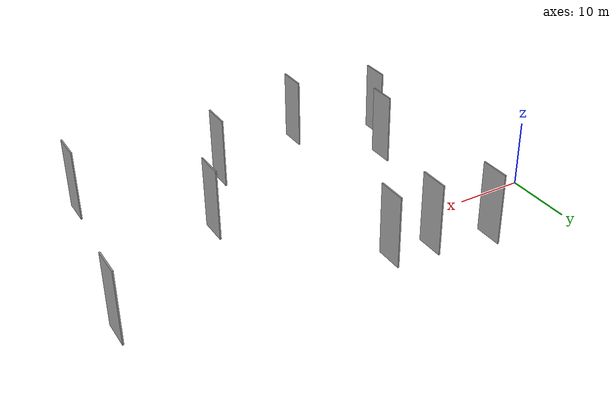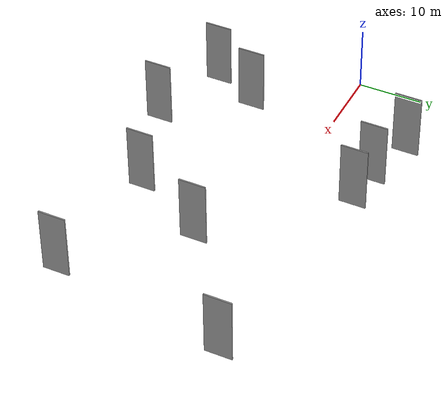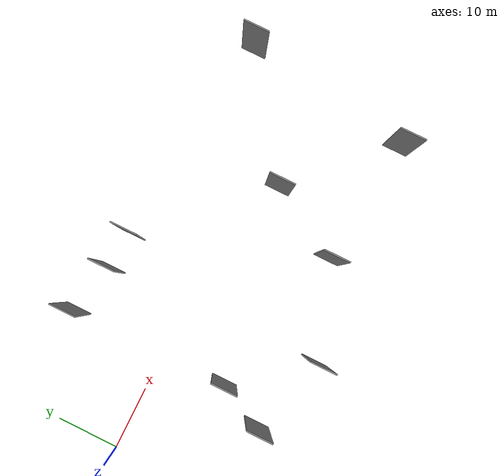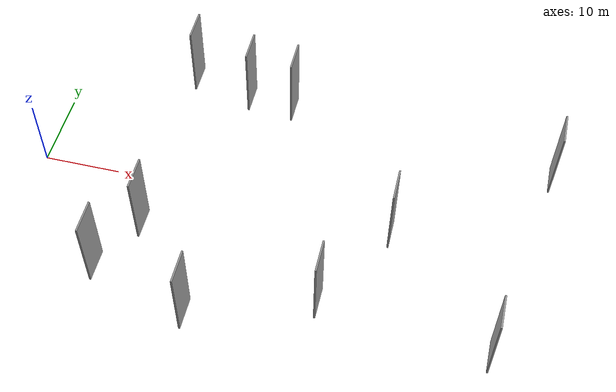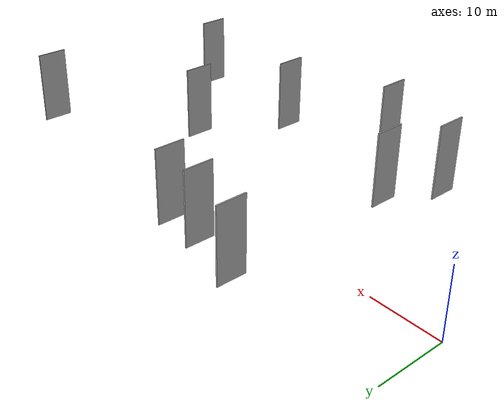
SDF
<sdf version="1.6">
 <world name="default">
  <scene>
   <sky><clouds><speed>12</speed></clouds></sky>
   <ambient>0.4 0.4 0.4 1</ambient>
   <background>0.7 0.7 0.7 1</background>
   <shadows>1</shadows>
  </scene>
  <gravity>0 0 -9.8066</gravity>
  <magnetic_field>6e-06 2.3e-05 -4.2e-05</magnetic_field>
  <physics default="0" name="default_physics" type="ode">
   <ode>
    <solver>
     <type>quick</type>
     <iters>10</iters>
     <sor>1.0</sor>
     <use_dynamic_moi_rescaling>0</use_dynamic_moi_rescaling>
    </solver>
    <constraints>
     <cfm>0</cfm>
     <erp>0.2</erp>
     <contact_max_correcting_vel>100</contact_max_correcting_vel>
     <contact_surface_layer>0.001</contact_surface_layer>
    </constraints>
   </ode>
   <max_step_size>0.004</max_step_size>
   <real_time_factor>1</real_time_factor>
   <real_time_update_rate>250</real_time_update_rate>
  </physics>
  <light name="sun" type="directional">
   <pose>0 0 10 0 0 0</pose>
   <diffuse>0.8 0.8 0.8 1</diffuse>
   <specular>0.2 0.2 0.2 1</specular>
   <attenuation>
    <range>1000</range>
    <constant>0.9</constant>
    <linear>0.01</linear>
    <quadratic>0.001</quadratic>
   </attenuation>
   <direction>-0.5 0.1 -0.9</direction>
  </light>
  <model name="grey_wall_1">
   <static>1</static>
   <pose>26.0132 -20.9499 5.0 0.000000 0.000000 1.570796</pose>
   <link name="link">
    <pose>0 0 5.00 0 0 0</pose>
    <collision name="collision"><geometry><box><size>4.00 0.2 10.00</size></box></geometry></collision>
    <visual name="visual">
     <cast_shadows>0</cast_shadows>
     <geometry><box><size>4.00 0.2 10.00</size></box></geometry>
     <material>
      <script>
       <uri>model://grey_wall/materials/scripts</uri>
       <uri>model://grey_wall/materials/textures</uri>
       <name>vrc/grey_wall</name>
      </script>
     </material>
    </visual>
   </link>
  </model>
  <model name="grey_wall_2">
   <static>1</static>
   <pose>40.4633 -16.0768 5.0 0.000000 0.000000 1.570796</pose>
   <link name="link">
    <pose>0 0 5.00 0 0 0</pose>
    <collision name="collision"><geometry><box><size>4.00 0.2 10.00</size></box></geometry></collision>
    <visual name="visual">
     <cast_shadows>0</cast_shadows>
     <geometry><box><size>4.00 0.2 10.00</size></box></geometry>
     <material>
      <script>
       <uri>model://grey_wall/materials/scripts</uri>
       <uri>model://grey_wall/materials/textures</uri>
       <name>vrc/grey_wall</name>
      </script>
     </material>
    </visual>
   </link>
  </model>
  <model name="grey_wall_3">
   <static>1</static>
   <pose>46.7918 -4.7349 5.0 0.000000 0.000000 1.570796</pose>
   <link name="link">
    <pose>0 0 5.00 0 0 0</pose>
    <collision name="collision"><geometry><box><size>4.00 0.2 10.00</size></box></geometry></collision>
    <visual name="visual">
     <cast_shadows>0</cast_shadows>
     <geometry><box><size>4.00 0.2 10.00</size></box></geometry>
     <material>
      <script>
       <uri>model://grey_wall/materials/scripts</uri>
       <uri>model://grey_wall/materials/textures</uri>
       <name>vrc/grey_wall</name>
      </script>
     </material>
    </visual>
   </link>
  </model>
  <model name="grey_wall_4">
   <static>1</static>
   <pose>30.9548 11.8384 5.0 0.000000 0.000000 1.570796</pose>
   <link name="link">
    <pose>0 0 5.00 0 0 0</pose>
    <collision name="collision"><geometry><box><size>4.00 0.2 10.00</size></box></geometry></collision>
    <visual name="visual">
     <cast_shadows>0</cast_shadows>
     <geometry><box><size>4.00 0.2 10.00</size></box></geometry>
     <material>
      <script>
       <uri>model://grey_wall/materials/scripts</uri>
       <uri>model://grey_wall/materials/textures</uri>
       <name>vrc/grey_wall</name>
      </script>
     </material>
    </visual>
   </link>
  </model>
  <model name="grey_wall_5">
   <static>1</static>
   <pose>64.5863 7.9547 5.0 0.000000 0.000000 1.570796</pose>
   <link name="link">
    <pose>0 0 5.00 0 0 0</pose>
    <collision name="collision"><geometry><box><size>4.00 0.2 10.00</size></box></geometry></collision>
    <visual name="visual">
     <cast_shadows>0</cast_shadows>
     <geometry><box><size>4.00 0.2 10.00</size></box></geometry>
     <material>
      <script>
       <uri>model://grey_wall/materials/scripts</uri>
       <uri>model://grey_wall/materials/textures</uri>
       <name>vrc/grey_wall</name>
      </script>
     </material>
    </visual>
   </link>
  </model>
  <model name="grey_wall_6">
   <static>1</static>
   <pose>25.1287 12.2802 5.0 0.000000 0.000000 1.570796</pose>
   <link name="link">
    <pose>0 0 5.00 0 0 0</pose>
    <collision name="collision"><geometry><box><size>4.00 0.2 10.00</size></box></geometry></collision>
    <visual name="visual">
     <cast_shadows>0</cast_shadows>
     <geometry><box><size>4.00 0.2 10.00</size></box></geometry>
     <material>
      <script>
       <uri>model://grey_wall/materials/scripts</uri>
       <uri>model://grey_wall/materials/textures</uri>
       <name>vrc/grey_wall</name>
      </script>
     </material>
    </visual>
   </link>
  </model>
  <model name="grey_wall_7">
   <static>1</static>
   <pose>17.5053 -10.1915 5.0 0.000000 0.000000 1.570796</pose>
   <link name="link">
    <pose>0 0 5.00 0 0 0</pose>
    <collision name="collision"><geometry><box><size>4.00 0.2 10.00</size></box></geometry></collision>
    <visual name="visual">
     <cast_shadows>0</cast_shadows>
     <geometry><box><size>4.00 0.2 10.00</size></box></geometry>
     <material>
      <script>
       <uri>model://grey_wall/materials/scripts</uri>
       <uri>model://grey_wall/materials/textures</uri>
       <name>vrc/grey_wall</name>
      </script>
     </material>
    </visual>
   </link>
  </model>
  <model name="grey_wall_8">
   <static>1</static>
   <pose>14.0247 -17.2253 5.0 0.000000 0.000000 1.570796</pose>
   <link name="link">
    <pose>0 0 5.00 0 0 0</pose>
    <collision name="collision"><geometry><box><size>4.00 0.2 10.00</size></box></geometry></collision>
    <visual name="visual">
     <cast_shadows>0</cast_shadows>
     <geometry><box><size>4.00 0.2 10.00</size></box></geometry>
     <material>
      <script>
       <uri>model://grey_wall/materials/scripts</uri>
       <uri>model://grey_wall/materials/textures</uri>
       <name>vrc/grey_wall</name>
      </script>
     </material>
    </visual>
   </link>
  </model>
  <model name="grey_wall_9">
   <static>1</static>
   <pose>60.3546 -18.2631 5.0 0.000000 0.000000 1.570796</pose>
   <link name="link">
    <pose>0 0 5.00 0 0 0</pose>
    <collision name="collision"><geometry><box><size>4.00 0.2 10.00</size></box></geometry></collision>
    <visual name="visual">
     <cast_shadows>0</cast_shadows>
     <geometry><box><size>4.00 0.2 10.00</size></box></geometry>
     <material>
      <script>
       <uri>model://grey_wall/materials/scripts</uri>
       <uri>model://grey_wall/materials/textures</uri>
       <name>vrc/grey_wall</name>
      </script>
     </material>
    </visual>
   </link>
  </model>
  <model name="grey_wall_10">
   <static>1</static>
   <pose>17.3332 14.1723 5.0 0.000000 0.000000 1.570796</pose>
   <link name="link">
    <pose>0 0 5.00 0 0 0</pose>
    <collision name="collision"><geometry><box><size>4.00 0.2 10.00</size></box></geometry></collision>
    <visual name="visual">
     <cast_shadows>0</cast_shadows>
     <geometry><box><size>4.00 0.2 10.00</size></box></geometry>
     <material>
      <script>
       <uri>model://grey_wall/materials/scripts</uri>
       <uri>model://grey_wall/materials/textures</uri>
       <name>vrc/grey_wall</name>
      </script>
     </material>
    </visual>
   </link>
  </model>
 </world>
</sdf>
